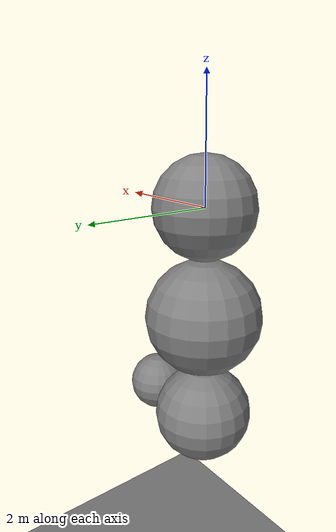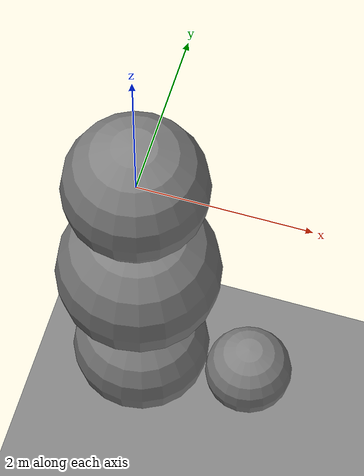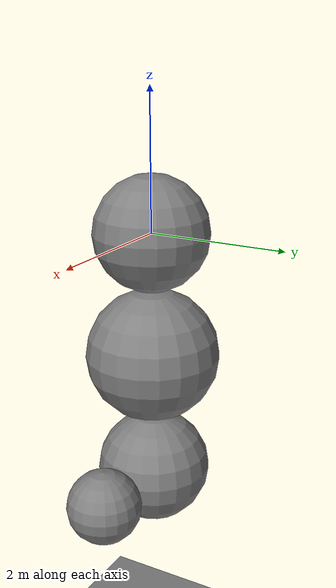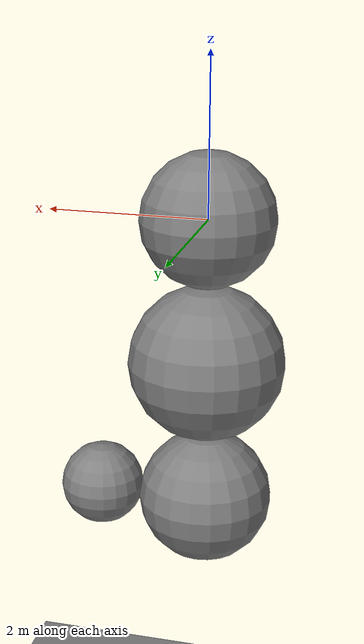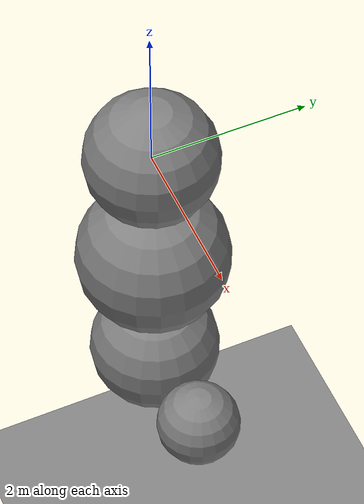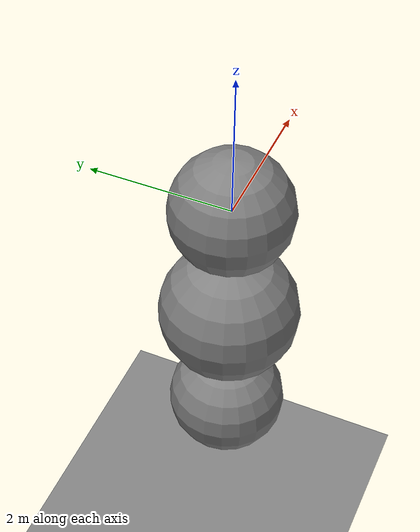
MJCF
<mujoco model="unnamed_model">
  <default>
    <default class="/"/>
  </default>
  <worldbody>
    <geom name="//unnamed_geom_0" class="/" type="plane" size="100 100 0.10000000000000001" pos="0 0 -7.2947228637463208"/>
    <body name="body0" pos="0 0 0">
      <joint name="//unnamed_joint_0" class="/" type="free"/>
      <geom name="//unnamed_geom_1" class="/" type="sphere" size="0.83540273454038494 0.83540273454038494 0.83540273454038494"/>
      <body name="body1" pos="0 0 -1.8151006953633786">
        <geom name="//unnamed_geom_2" class="/" type="sphere" size="0.97969796082299365 0.97969796082299365 0.97969796082299365"/>
        <joint name="//unnamed_joint_1" class="/" type="hinge" axis="0 0 1"/>
        <body name="body2" pos="0 0 -1.8197733764019786">
          <geom name="//unnamed_geom_3" class="/" type="sphere" size="0.84007541557898491 0.84007541557898491 0.84007541557898491"/>
          <joint name="//unnamed_joint_2" class="/" type="hinge" axis="0 0 1"/>
          <body name="body3" pos="1.3721442702935398 0 0">
            <geom name="//unnamed_geom_4" class="/" type="sphere" size="0.5320688547145549 0.5320688547145549 0.5320688547145549"/>
            <joint name="//unnamed_joint_3" class="/" type="ball" axis="-1 0 0"/>
          </body>
        </body>
      </body>
    </body>
  </worldbody>
  <actuator>
    <motor name="body1_motor" class="/" ctrllimited="true" ctrlrange="-100 100" joint="//unnamed_joint_1"/>
    <motor name="body2_motor" class="/" ctrllimited="true" ctrlrange="-100 100" joint="//unnamed_joint_2"/>
    <motor name="body3_motor" class="/" ctrllimited="true" ctrlrange="-100 100" joint="//unnamed_joint_3"/>
  </actuator>
</mujoco>
